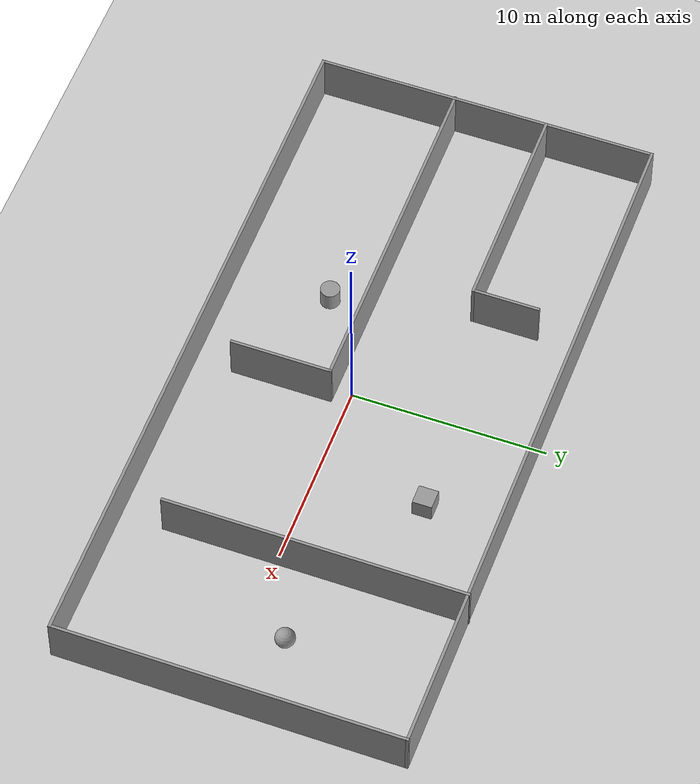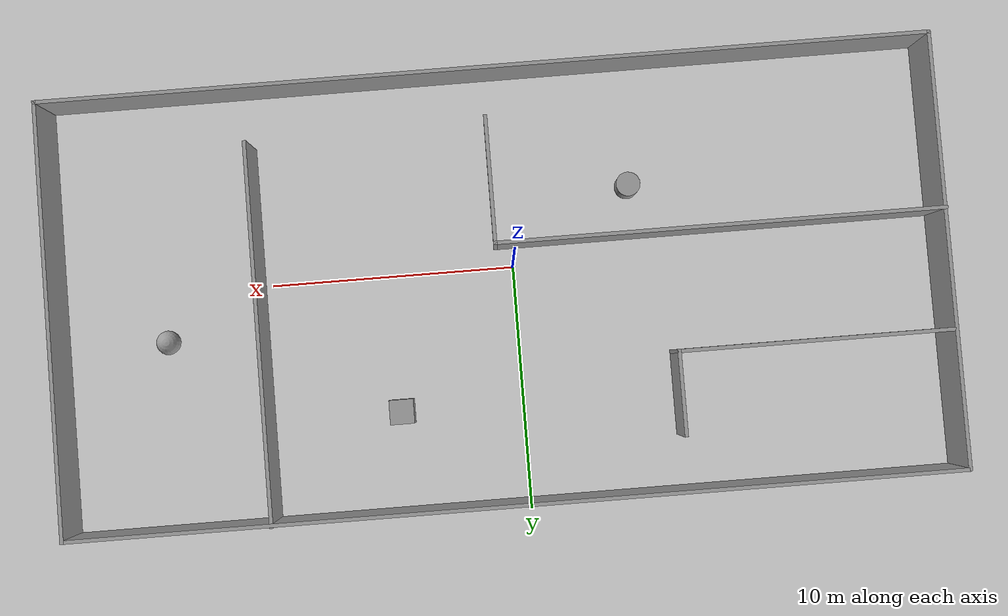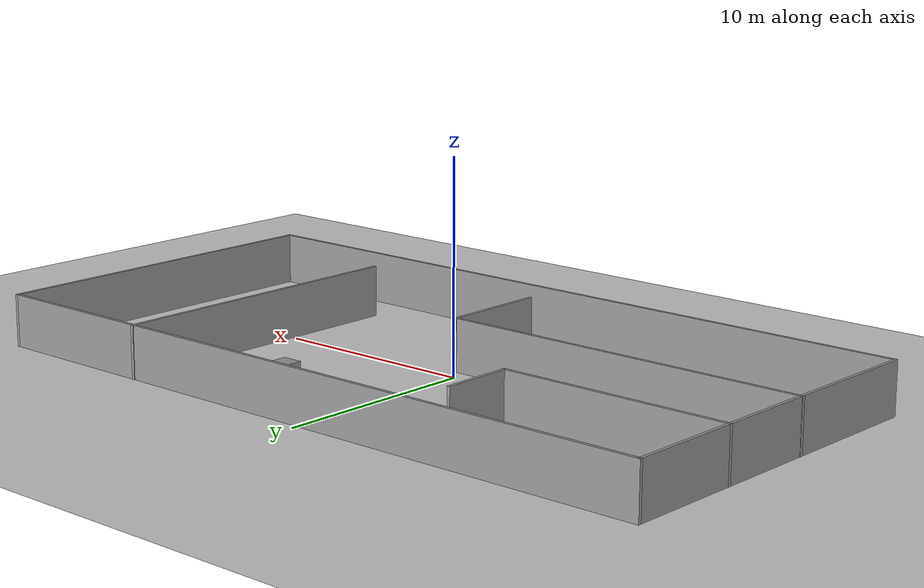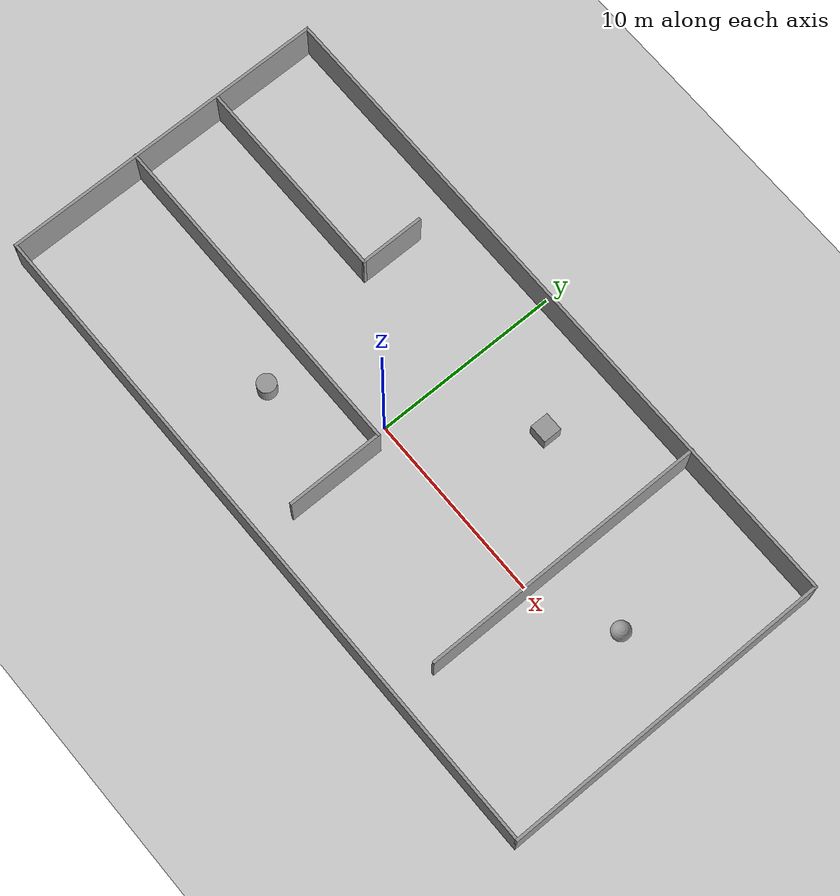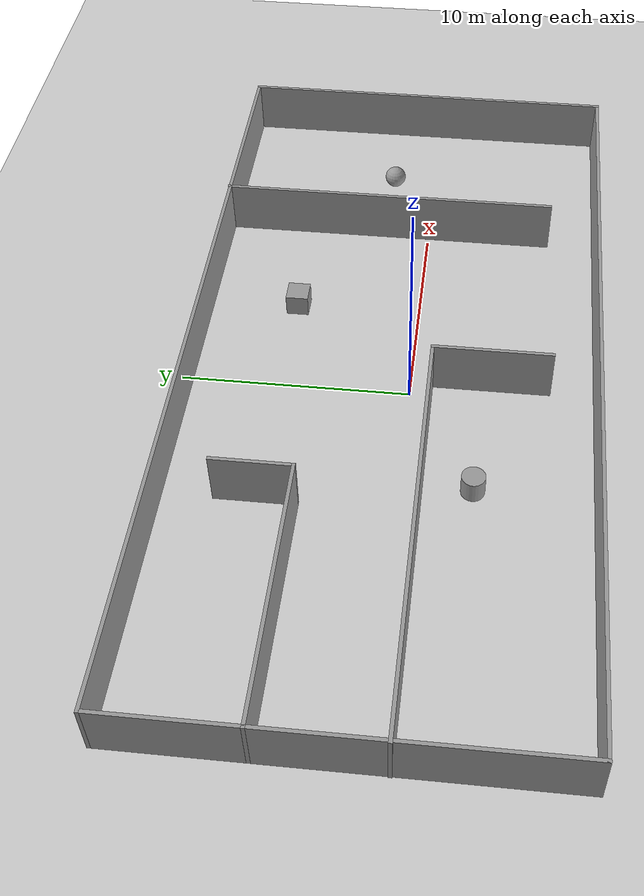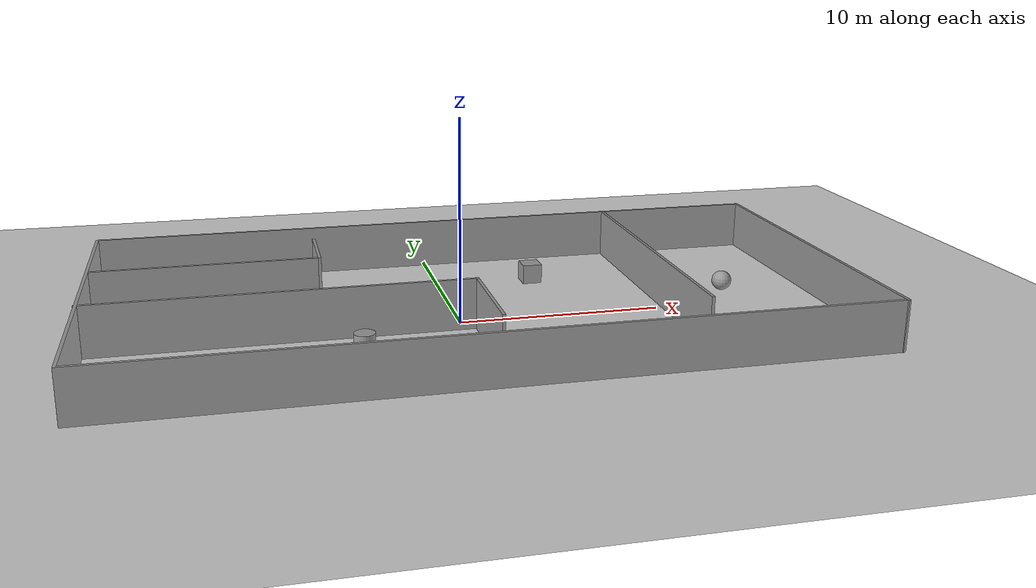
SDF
<sdf version="1.7">
 <world name="default">
  <light name="sun" type="directional">
   <pose>0 0 10 0 -0 0</pose>
   <diffuse>0.8 0.8 0.8 1</diffuse>
   <specular>0.2 0.2 0.2 1</specular>
   <attenuation>
    <range>1000</range>
    <constant>0.9</constant>
    <linear>0.01</linear>
    <quadratic>0.001</quadratic>
   </attenuation>
   <direction>-0.5 0.1 -0.9</direction>
   <spot><inner_angle>0</inner_angle><outer_angle>0</outer_angle><falloff>0</falloff></spot>
  </light>
  <model name="ground_plane">
   <static>1</static>
   <link name="link">
    <collision name="collision">
     <geometry><plane><normal>0 0 1</normal><size>100 100</size></plane></geometry>
     <surface><friction><ode><mu>100</mu><mu2>50</mu2></ode></friction></surface>
    </collision>
    <visual name="visual">
     <cast_shadows>0</cast_shadows>
     <geometry><plane><normal>0 0 1</normal><size>100 100</size></plane></geometry>
     <material>
      <script><uri>file://media/materials/scripts/gazebo.material</uri><name>Gazebo/Grey</name></script>
     </material>
    </visual>
   </link>
  </model>
  <gravity>0 0 -9.8</gravity>
  <magnetic_field>6e-06 2.3e-05 -4.2e-05</magnetic_field>
  <atmosphere type="adiabatic"/>
  <physics type="ode">
   <max_step_size>0.001</max_step_size>
   <real_time_factor>1</real_time_factor>
   <real_time_update_rate>1000</real_time_update_rate>
  </physics>
  <scene><ambient>0.4 0.4 0.4 1</ambient><background>0.7 0.7 0.7 1</background><shadows>1</shadows></scene>
  <audio><device>default</device></audio>
  <spherical_coordinates>
   <surface_model>EARTH_WGS84</surface_model>
   <latitude_deg>0</latitude_deg>
   <longitude_deg>0</longitude_deg>
   <elevation>0</elevation>
   <heading_deg>0</heading_deg>
  </spherical_coordinates>
  <model name="room_0">
   <pose>0.617624 0.821098 0 0 -0 0</pose>
   <link name="Wall_10">
    <collision name="Wall_10_Collision">
     <geometry><box><size>11.25 0.15 2.5</size></box></geometry>
     <pose>0 0 1.25 0 -0 0</pose>
    </collision>
    <visual name="Wall_10_Visual">
     <pose>0 0 1.25 0 -0 0</pose>
     <geometry><box><size>11.25 0.15 2.5</size></box></geometry>
     <material>
      <script><uri>file://media/materials/scripts/gazebo.material</uri><name>Gazebo/Grey</name></script>
      <ambient>1 1 1 1</ambient>
     </material>
     <meta><layer>0</layer></meta>
    </visual>
    <pose>-12.4824 3.18899 0 0 -0 0</pose>
   </link>
   <link name="Wall_11">
    <collision name="Wall_11_Collision">
     <geometry><box><size>3.5 0.15 2.5</size></box></geometry>
     <pose>0 0 1.25 0 -0 0</pose>
    </collision>
    <visual name="Wall_11_Visual">
     <pose>0 0 1.25 0 -0 0</pose>
     <geometry><box><size>3.5 0.15 2.5</size></box></geometry>
     <material>
      <script><uri>file://media/materials/scripts/gazebo.material</uri><name>Gazebo/Grey</name></script>
      <ambient>1 1 1 1</ambient>
     </material>
     <meta><layer>0</layer></meta>
    </visual>
    <pose>-6.93241 4.86399 0 0 -0 1.5708</pose>
   </link>
   <link name="Wall_13">
    <collision name="Wall_13_Collision">
     <geometry><box><size>18.25 0.15 2.5</size></box></geometry>
     <pose>0 0 1.25 0 -0 0</pose>
    </collision>
    <visual name="Wall_13_Visual">
     <pose>0 0 1.25 0 -0 0</pose>
     <geometry><box><size>18.25 0.15 2.5</size></box></geometry>
     <material>
      <script><uri>file://media/materials/scripts/gazebo.material</uri><name>Gazebo/Grey</name></script>
      <ambient>1 1 1 1</ambient>
     </material>
     <meta><layer>0</layer></meta>
    </visual>
    <pose>-9.01759 -1.70086 0 0 -0 0</pose>
   </link>
   <link name="Wall_14">
    <collision name="Wall_14_Collision">
     <geometry><box><size>5.25 0.15 2.5</size></box></geometry>
     <pose>0 0 1.25 0 -0 0</pose>
    </collision>
    <visual name="Wall_14_Visual">
     <pose>0 0 1.25 0 -0 0</pose>
     <geometry><box><size>5.25 0.15 2.5</size></box></geometry>
     <material>
      <script><uri>file://media/materials/scripts/gazebo.material</uri><name>Gazebo/Grey</name></script>
      <ambient>1 1 1 1</ambient>
     </material>
     <meta><layer>0</layer></meta>
    </visual>
    <pose>0.032411 -4.25086 0 0 -0 -1.5708</pose>
   </link>
   <link name="Wall_16">
    <collision name="Wall_16_Collision">
     <geometry><box><size>15.5 0.15 2.5</size></box></geometry>
     <pose>0 0 1.25 0 -0 0</pose>
    </collision>
    <visual name="Wall_16_Visual">
     <pose>0 0 1.25 0 -0 0</pose>
     <geometry><box><size>15.5 0.15 2.5</size></box></geometry>
     <material>
      <script><uri>file://media/materials/scripts/gazebo.material</uri><name>Gazebo/Grey</name></script>
      <ambient>1 1 1 1</ambient>
     </material>
     <meta><layer>0</layer></meta>
    </visual>
    <pose>9.75881 1.14259 0 0 -0 -1.5708</pose>
   </link>
   <link name="Wall_5">
    <collision name="Wall_5_Collision">
     <geometry><box><size>17.75 0.15 2.5</size></box></geometry>
     <pose>0 0 1.25 0 -0 0</pose>
    </collision>
    <visual name="Wall_5_Visual">
     <pose>0 0 1.25 0 -0 0</pose>
     <geometry><box><size>17.75 0.15 2.5</size></box></geometry>
     <material>
      <script><uri>file://media/materials/scripts/gazebo.material</uri><name>Gazebo/Grey</name></script>
      <ambient>1 1 1 1</ambient>
     </material>
     <meta><layer>0</layer></meta>
    </visual>
    <pose>-18.0324 -0.017589 0 0 -0 -1.5708</pose>
   </link>
   <link name="Wall_6">
    <collision name="Wall_6_Collision">
     <geometry><box><size>36.25 0.15 2.5</size></box></geometry>
     <pose>0 0 1.25 0 -0 0</pose>
    </collision>
    <visual name="Wall_6_Visual">
     <pose>0 0 1.25 0 -0 0</pose>
     <geometry><box><size>36.25 0.15 2.5</size></box></geometry>
     <material>
      <script><uri>file://media/materials/scripts/gazebo.material</uri><name>Gazebo/Grey</name></script>
      <ambient>1 1 1 1</ambient>
     </material>
     <meta><layer>0</layer></meta>
    </visual>
    <pose>0.017589 -8.81759 0 0 -0 0</pose>
   </link>
   <link name="Wall_7">
    <collision name="Wall_7_Collision">
     <geometry><box><size>17.75 0.15 2.5</size></box></geometry>
     <pose>0 0 1.25 0 -0 0</pose>
    </collision>
    <visual name="Wall_7_Visual">
     <pose>0 0 1.25 0 -0 0</pose>
     <geometry><box><size>17.75 0.15 2.5</size></box></geometry>
     <material>
      <script><uri>file://media/materials/scripts/gazebo.material</uri><name>Gazebo/Grey</name></script>
      <ambient>1 1 1 1</ambient>
     </material>
     <meta><layer>0</layer></meta>
    </visual>
    <pose>18.0676 -0.017589 0 0 -0 1.5708</pose>
   </link>
   <link name="Wall_8">
    <collision name="Wall_8_Collision">
     <geometry><box><size>36.25 0.15 2.5</size></box></geometry>
     <pose>0 0 1.25 0 -0 0</pose>
    </collision>
    <visual name="Wall_8_Visual">
     <pose>0 0 1.25 0 -0 0</pose>
     <geometry><box><size>36.25 0.15 2.5</size></box></geometry>
     <material>
      <script><uri>file://media/materials/scripts/gazebo.material</uri><name>Gazebo/Grey</name></script>
      <ambient>1 1 1 1</ambient>
     </material>
     <meta><layer>0</layer></meta>
    </visual>
    <pose>0.017589 8.78241 0 0 -0 3.14159</pose>
   </link>
   <static>1</static>
  </model>
  <model name="unit_box">
   <pose>5 5.58571 0.499995 0 1e-05 0</pose>
   <link name="link">
    <inertial>
     <mass>1</mass>
     <inertia>
      <ixx>0.166667</ixx>
      <ixy>0</ixy>
      <ixz>0</ixz>
      <iyy>0.166667</iyy>
      <iyz>0</iyz>
      <izz>0.166667</izz>
     </inertia>
    </inertial>
    <collision name="collision"><geometry><box><size>1 1 1</size></box></geometry></collision>
    <visual name="visual">
     <geometry><box><size>1 1 1</size></box></geometry>
     <material>
      <script><name>Gazebo/Grey</name><uri>file://media/materials/scripts/gazebo.material</uri></script>
     </material>
    </visual>
   </link>
  </model>
  <model name="unit_cylinder">
   <pose>-5 -3 0.499993 -3e-06 -4e-06 -0</pose>
   <link name="link">
    <inertial>
     <mass>1</mass>
     <inertia><ixx>0.145833</ixx><ixy>0</ixy><ixz>0</ixz><iyy>0.145833</iyy><iyz>0</iyz><izz>0.125</izz></inertia>
    </inertial>
    <collision name="collision">
     <geometry><cylinder><radius>0.5</radius><length>1</length></cylinder></geometry>
    </collision>
    <visual name="visual">
     <geometry><cylinder><radius>0.5</radius><length>1</length></cylinder></geometry>
     <material>
      <script><name>Gazebo/Grey</name><uri>file://media/materials/scripts/gazebo.material</uri></script>
     </material>
    </visual>
   </link>
  </model>
  <model name="unit_sphere">
   <pose>14.4031 2 0.5 0 -0 0</pose>
   <link name="link">
    <inertial>
     <mass>1</mass>
     <inertia><ixx>0.1</ixx><ixy>0</ixy><ixz>0</ixz><iyy>0.1</iyy><iyz>0</iyz><izz>0.1</izz></inertia>
    </inertial>
    <collision name="collision"><geometry><sphere><radius>0.5</radius></sphere></geometry></collision>
    <visual name="visual">
     <geometry><sphere><radius>0.5</radius></sphere></geometry>
     <material>
      <script><name>Gazebo/Grey</name><uri>file://media/materials/scripts/gazebo.material</uri></script>
     </material>
    </visual>
   </link>
  </model>
 </world>
</sdf>
